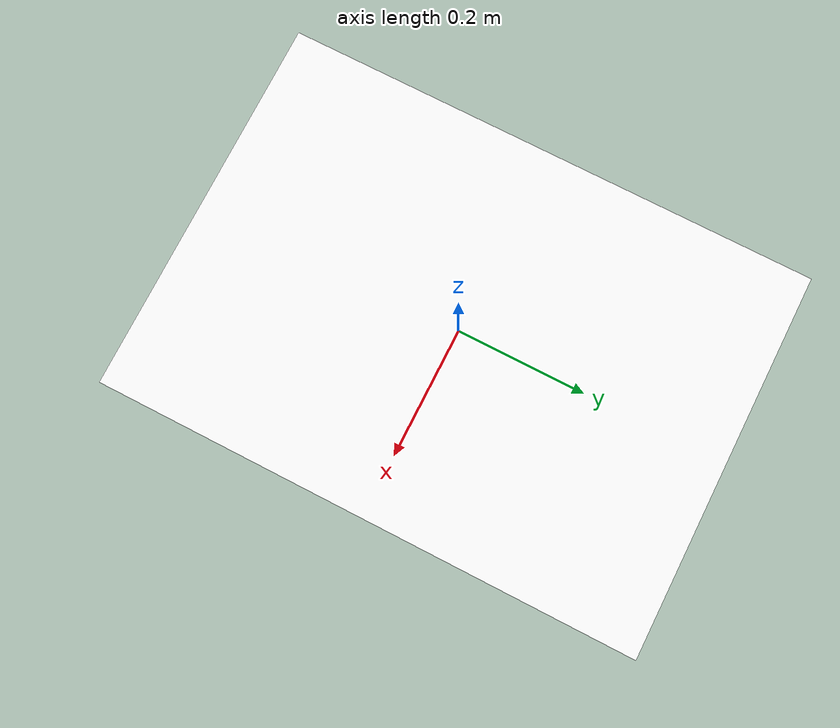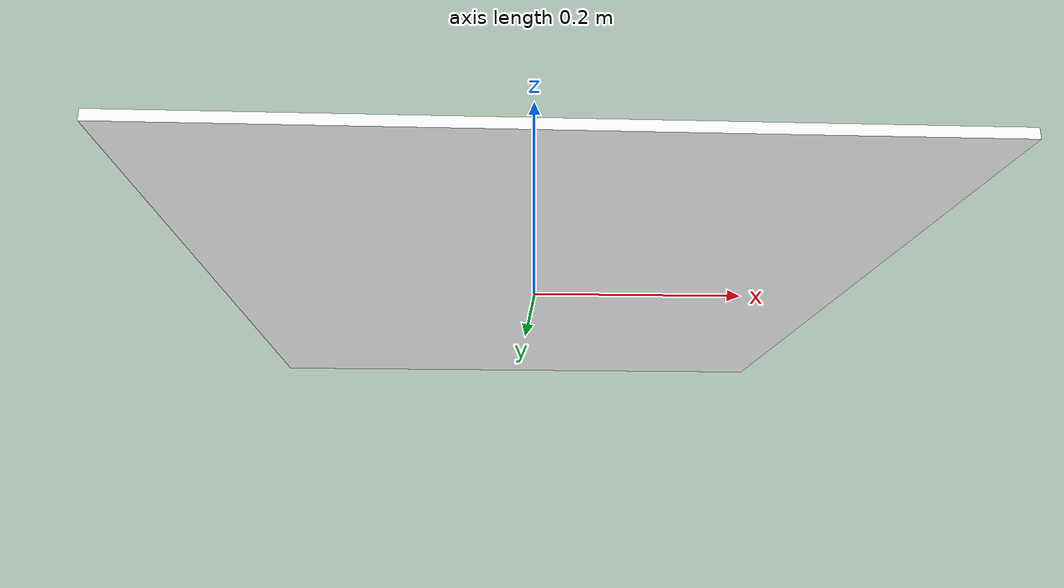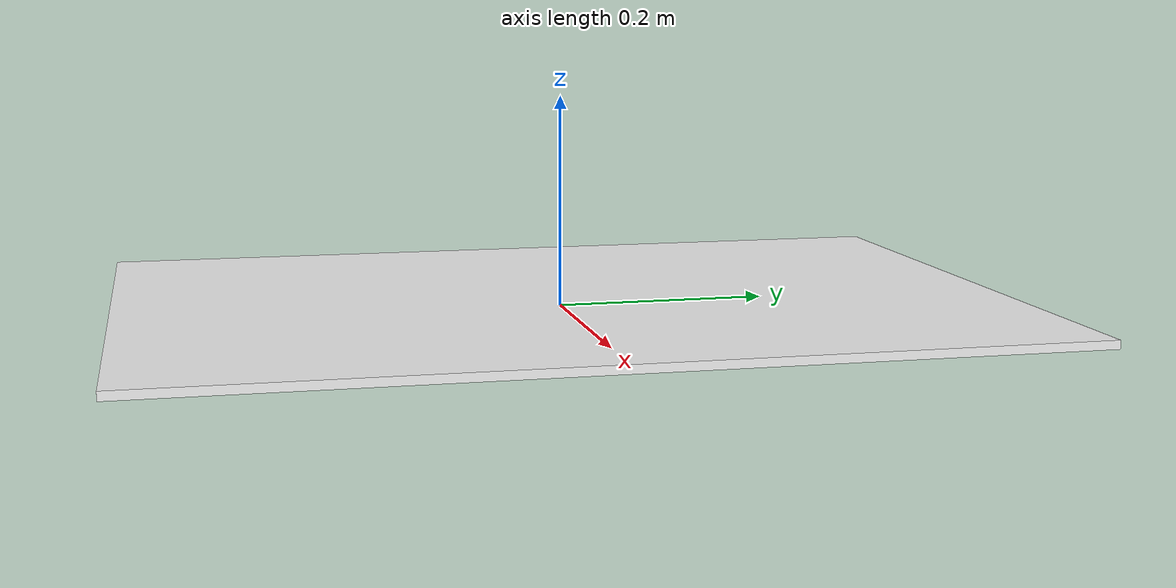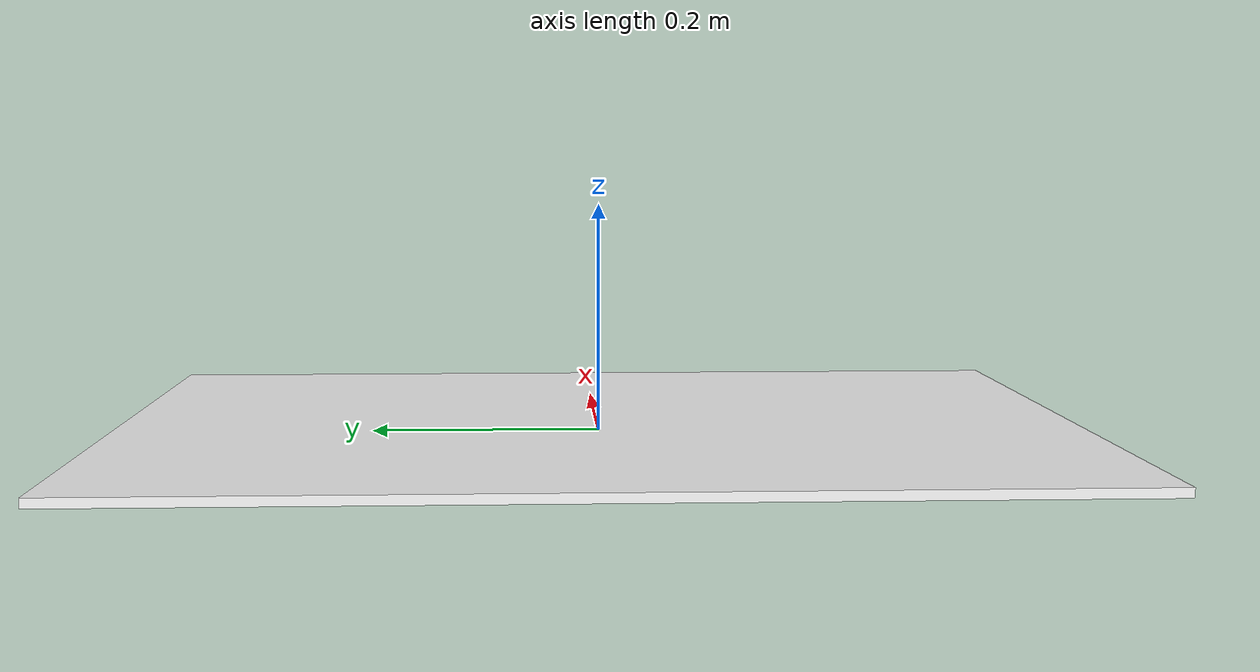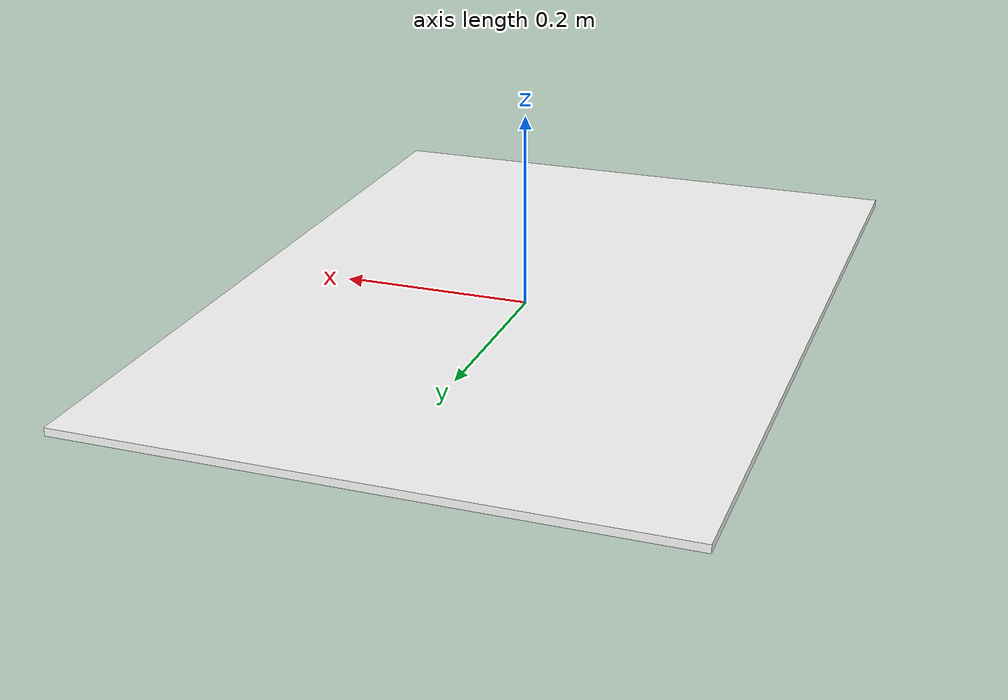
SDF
<?xml version="1.0"?>
<sdf version="1.9">
  <model name="qr_panel_big">
    <static>true</static>
    <link name="panel">
      <pose>0 0 0.004 0 0 0</pose>
      <visual name="face">
        <geometry>
          <box><size>0.594 0.84 0.008</size></box>
        </geometry>
        <material>
          <diffuse>1 1 1 1</diffuse>
          <specular>0.05 0.05 0.05 1</specular>
          <pbr>
            <metal>
              <albedo_map>model://qr_panel_big/materials/textures/qr.png</albedo_map>
            </metal>
          </pbr>
        </material>
      </visual>
      <collision name="surface">
        <geometry>
          <box><size>0.594 0.84 0.008</size></box>
        </geometry>
      </collision>
    </link>
  </model>
</sdf>
